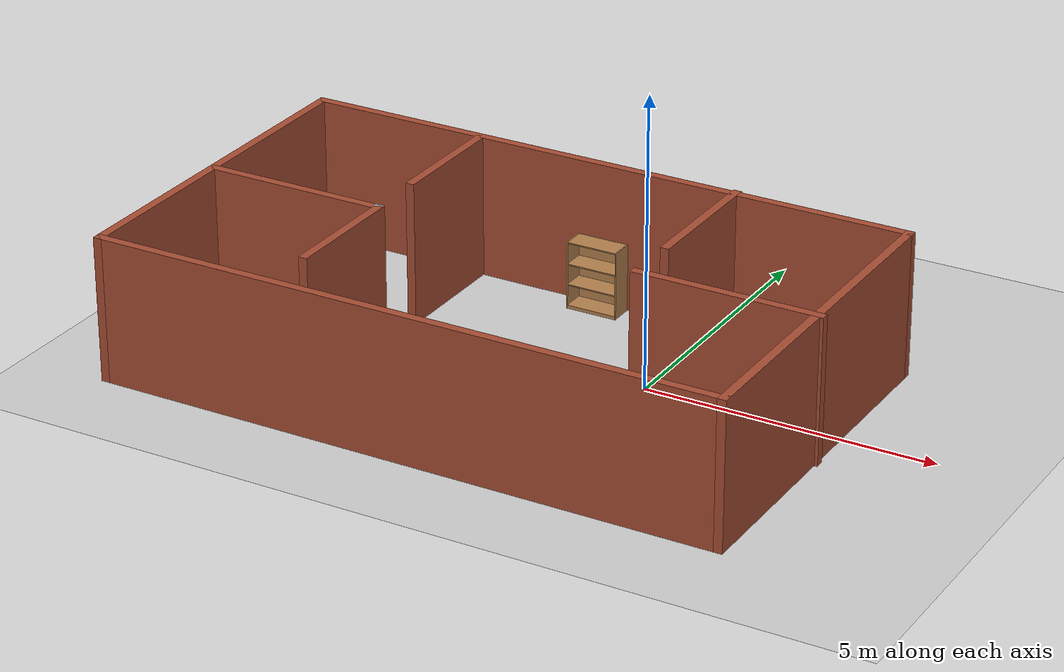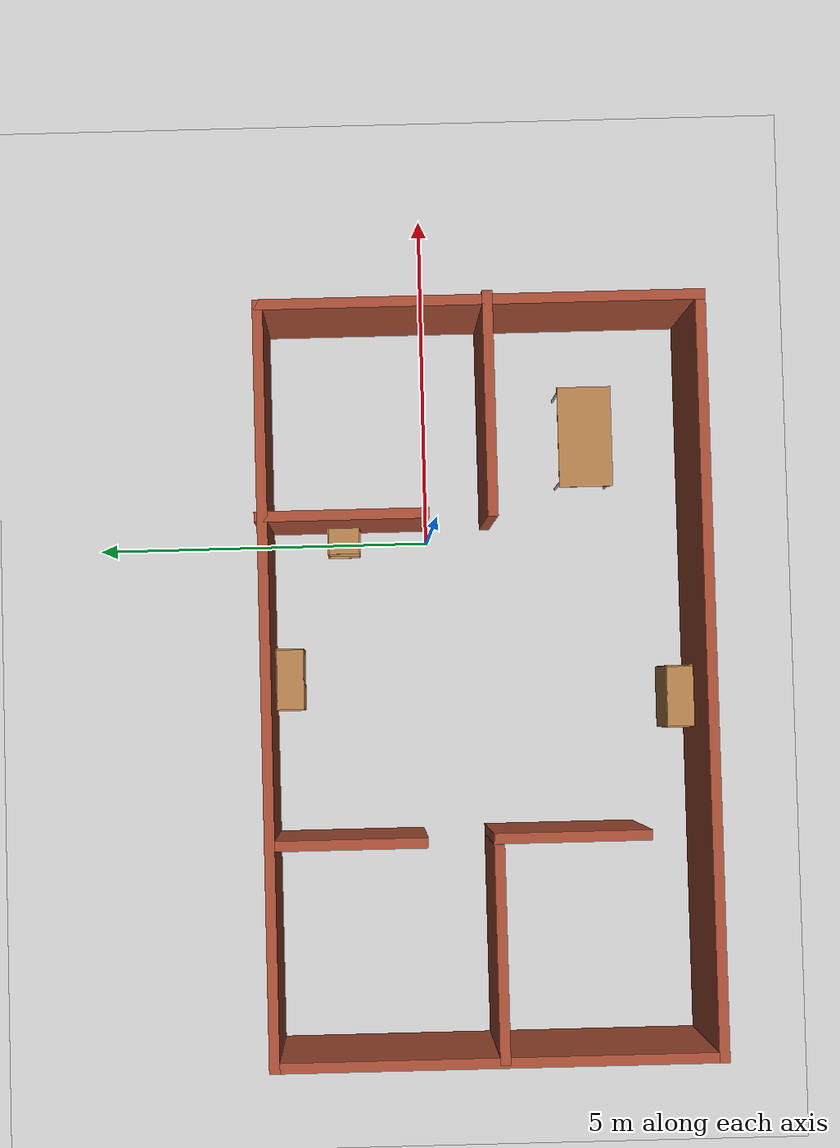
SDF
<sdf version="1.7">
 <world name="default">
  <light name="sun" type="directional">
   <pose>0 0 10 0 -0 0</pose>
   <diffuse>0.8 0.8 0.8 1</diffuse>
   <specular>0.2 0.2 0.2 1</specular>
   <attenuation>
    <range>1000</range>
    <constant>0.9</constant>
    <linear>0.01</linear>
    <quadratic>0.001</quadratic>
   </attenuation>
   <direction>-0.5 0.1 -0.9</direction>
   <spot><inner_angle>0</inner_angle><outer_angle>0</outer_angle><falloff>0</falloff></spot>
  </light>
  <model name="ground_plane">
   <static>1</static>
   <link name="link">
    <collision name="collision">
     <geometry><plane><normal>0 0 1</normal><size>100 100</size></plane></geometry>
     <surface>
      <contact><collide_bitmask>65535</collide_bitmask></contact>
      <friction><ode><mu>100</mu><mu2>50</mu2></ode></friction>
     </surface>
    </collision>
    <visual name="visual">
     <cast_shadows>0</cast_shadows>
     <geometry><plane><normal>0 0 1</normal><size>100 100</size></plane></geometry>
     <material>
      <script><uri>file://media/materials/scripts/gazebo.material</uri><name>Gazebo/Grey</name></script>
     </material>
    </visual>
   </link>
  </model>
  <gravity>0 0 -9.8</gravity>
  <magnetic_field>6e-06 2.3e-05 -4.2e-05</magnetic_field>
  <atmosphere type="adiabatic"/>
  <physics type="ode">
   <max_step_size>0.001</max_step_size>
   <real_time_factor>1</real_time_factor>
   <real_time_update_rate>1000</real_time_update_rate>
  </physics>
  <scene><ambient>0.4 0.4 0.4 1</ambient><background>0.7 0.7 0.7 1</background><shadows>1</shadows></scene>
  <spherical_coordinates>
   <surface_model>EARTH_WGS84</surface_model>
   <latitude_deg>0</latitude_deg>
   <longitude_deg>0</longitude_deg>
   <elevation>0</elevation>
   <heading_deg>0</heading_deg>
  </spherical_coordinates>
  <model name="modelhouse">
   <pose>-2.07213 -0.741372 0 0 -0 0</pose>
   <link name="Wall_0">
    <collision name="Wall_0_Collision">
     <geometry><box><size>6.5 0.15 2.5</size></box></geometry>
     <pose>0 0 1.25 0 -0 0</pose>
    </collision>
    <visual name="Wall_0_Visual">
     <pose>0 0 1.25 0 -0 0</pose>
     <geometry><box><size>6.5 0.15 2.5</size></box></geometry>
     <material>
      <script><uri>file://media/materials/scripts/gazebo.material</uri><name>Gazebo/Bricks</name></script>
      <ambient>1 1 1 1</ambient>
     </material>
     <meta><layer>0</layer></meta>
    </visual>
    <pose>-5.45203 -0.020113 0 0 -0 -1.5708</pose>
   </link>
   <link name="Wall_1">
    <collision name="Wall_1_Collision">
     <geometry><box><size>11 0.15 2.5</size></box></geometry>
     <pose>0 0 1.25 0 -0 0</pose>
    </collision>
    <visual name="Wall_1_Visual">
     <pose>0 0 1.25 0 -0 0</pose>
     <geometry><box><size>11 0.15 2.5</size></box></geometry>
     <material>
      <script><uri>file://media/materials/scripts/gazebo.material</uri><name>Gazebo/Bricks</name></script>
      <ambient>1 1 1 1</ambient>
     </material>
     <meta><layer>0</layer></meta>
    </visual>
    <pose>-0.027033 -3.19511 0 0 -0 0</pose>
   </link>
   <link name="Wall_10">
    <collision name="Wall_10_Collision">
     <geometry><box><size>2.25 0.15 2.5</size></box></geometry>
     <pose>0 0 1.25 0 -0 0</pose>
    </collision>
    <visual name="Wall_10_Visual">
     <pose>0 0 1.25 0 -0 0</pose>
     <geometry><box><size>2.25 0.15 2.5</size></box></geometry>
     <material>
      <script><uri>file://media/materials/scripts/gazebo.material</uri><name>Gazebo/Bricks</name></script>
      <ambient>1 1 1 1</ambient>
     </material>
     <meta><layer>0</layer></meta>
    </visual>
    <pose>-2.30181 -1.15351 0 0 -0 -1.5708</pose>
   </link>
   <link name="Wall_12">
    <collision name="Wall_12_Collision">
     <geometry><box><size>2.25 0.15 2.5</size></box></geometry>
     <pose>0 0 1.25 0 -0 0</pose>
    </collision>
    <visual name="Wall_12_Visual">
     <pose>0 0 1.25 0 -0 0</pose>
     <geometry><box><size>2.25 0.15 2.5</size></box></geometry>
     <material>
      <script><uri>file://media/materials/scripts/gazebo.material</uri><name>Gazebo/Bricks</name></script>
      <ambient>1 1 1 1</ambient>
     </material>
     <meta><layer>0</layer></meta>
    </visual>
    <pose>-2.33443 2.02443 0 0 -0 -1.5708</pose>
   </link>
   <link name="Wall_14">
    <collision name="Wall_14_Collision">
     <geometry><box><size>2.5 0.15 2.5</size></box></geometry>
     <pose>0 0 1.25 0 -0 0</pose>
    </collision>
    <visual name="Wall_14_Visual">
     <pose>0 0 1.25 0 -0 0</pose>
     <geometry><box><size>2.5 0.15 2.5</size></box></geometry>
     <material>
      <script><uri>file://media/materials/scripts/gazebo.material</uri><name>Gazebo/Bricks</name></script>
      <ambient>1 1 1 1</ambient>
     </material>
     <meta><layer>0</layer></meta>
    </visual>
    <pose>2.35203 2.02011 0 0 -0 -1.5708</pose>
   </link>
   <link name="Wall_16">
    <collision name="Wall_16_Collision">
     <geometry><box><size>3.25 0.15 2.5</size></box></geometry>
     <pose>0 0 1.25 0 -0 0</pose>
    </collision>
    <visual name="Wall_16_Visual">
     <pose>0 0 1.25 0 -0 0</pose>
     <geometry><box><size>3.25 0.15 2.5</size></box></geometry>
     <material>
      <script><uri>file://media/materials/scripts/gazebo.material</uri><name>Gazebo/Bricks</name></script>
      <ambient>1 1 1 1</ambient>
     </material>
     <meta><layer>0</layer></meta>
    </visual>
    <pose>3.90203 -0.143739 0 0 -0 0</pose>
   </link>
   <link name="Wall_2">
    <collision name="Wall_2_Collision">
     <geometry><box><size>6.5 0.15 2.5</size></box></geometry>
     <pose>0 0 1.25 0 -0 0</pose>
    </collision>
    <visual name="Wall_2_Visual">
     <pose>0 0 1.25 0 -0 0</pose>
     <geometry><box><size>6.5 0.15 2.5</size></box></geometry>
     <material>
      <script><uri>file://media/materials/scripts/gazebo.material</uri><name>Gazebo/Bricks</name></script>
      <ambient>1 1 1 1</ambient>
     </material>
     <meta><layer>0</layer></meta>
    </visual>
    <pose>5.39797 -0.020113 0 0 -0 1.5708</pose>
   </link>
   <link name="Wall_3">
    <collision name="Wall_3_Collision">
     <geometry><box><size>11 0.15 2.5</size></box></geometry>
     <pose>0 0 1.25 0 -0 0</pose>
    </collision>
    <visual name="Wall_3_Visual">
     <pose>0 0 1.25 0 -0 0</pose>
     <geometry><box><size>11 0.15 2.5</size></box></geometry>
     <material>
      <script><uri>file://media/materials/scripts/gazebo.material</uri><name>Gazebo/Bricks</name></script>
      <ambient>1 1 1 1</ambient>
     </material>
     <meta><layer>0</layer></meta>
    </visual>
    <pose>-0.027033 3.15489 0 0 -0 3.14159</pose>
   </link>
   <link name="Wall_8">
    <collision name="Wall_8_Collision">
     <geometry><box><size>3.25 0.15 2.5</size></box></geometry>
     <pose>0 0 1.25 0 -0 0</pose>
    </collision>
    <visual name="Wall_8_Visual">
     <pose>0 0 1.25 0 -0 0</pose>
     <geometry><box><size>3.25 0.15 2.5</size></box></geometry>
     <material>
      <script><uri>file://media/materials/scripts/gazebo.material</uri><name>Gazebo/Bricks</name></script>
      <ambient>1 1 1 1</ambient>
     </material>
     <meta><layer>0</layer></meta>
    </visual>
    <pose>-3.86181 -0.103512 0 0 -0 0</pose>
   </link>
   <link name="Wall_9">
    <collision name="Wall_9_Collision">
     <geometry><box><size>0.16 0.15 2.5</size></box></geometry>
     <pose>0 0 1.25 0 -0 0</pose>
    </collision>
    <visual name="Wall_9_Visual">
     <pose>0 0 1.25 0 -0 0</pose>
     <geometry><box><size>0.16 0.15 2.5</size></box></geometry>
     <material>
      <script><uri>file://media/materials/scripts/gazebo.material</uri><name>Gazebo/Grey</name></script>
      <ambient>1 1 1 1</ambient>
     </material>
     <meta><layer>0</layer></meta>
    </visual>
    <pose>-2.30681 -0.103512 0 0 -0 0</pose>
   </link>
   <static>1</static>
  </model>
  <model name="table">
   <static>1</static>
   <link name="link">
    <collision name="surface">
     <pose>0 0 1 0 -0 0</pose>
     <geometry><box><size>1.5 0.8 0.03</size></box></geometry>
     <surface><friction><ode><mu>0.6</mu><mu2>0.6</mu2></ode></friction></surface>
    </collision>
    <visual name="visual1">
     <pose>0 0 1 0 -0 0</pose>
     <geometry><box><size>1.5 0.8 0.03</size></box></geometry>
     <material>
      <script><uri>file://media/materials/scripts/gazebo.material</uri><name>Gazebo/Wood</name></script>
     </material>
    </visual>
    <collision name="front_left_leg">
     <pose>0.68 0.38 0.5 0 -0 0</pose>
     <geometry><cylinder><radius>0.02</radius><length>1</length></cylinder></geometry>
    </collision>
    <visual name="front_left_leg">
     <pose>0.68 0.38 0.5 0 -0 0</pose>
     <geometry><cylinder><radius>0.02</radius><length>1</length></cylinder></geometry>
     <material>
      <script><uri>file://media/materials/scripts/gazebo.material</uri><name>Gazebo/Grey</name></script>
     </material>
    </visual>
    <collision name="front_right_leg">
     <pose>0.68 -0.38 0.5 0 -0 0</pose>
     <geometry><cylinder><radius>0.02</radius><length>1</length></cylinder></geometry>
    </collision>
    <visual name="front_right_leg">
     <pose>0.68 -0.38 0.5 0 -0 0</pose>
     <geometry><cylinder><radius>0.02</radius><length>1</length></cylinder></geometry>
     <material>
      <script><uri>file://media/materials/scripts/gazebo.material</uri><name>Gazebo/Grey</name></script>
     </material>
    </visual>
    <collision name="back_right_leg">
     <pose>-0.68 -0.38 0.5 0 -0 0</pose>
     <geometry><cylinder><radius>0.02</radius><length>1</length></cylinder></geometry>
    </collision>
    <visual name="back_right_leg">
     <pose>-0.68 -0.38 0.5 0 -0 0</pose>
     <geometry><cylinder><radius>0.02</radius><length>1</length></cylinder></geometry>
     <material>
      <script><uri>file://media/materials/scripts/gazebo.material</uri><name>Gazebo/Grey</name></script>
     </material>
    </visual>
    <collision name="back_left_leg">
     <pose>-0.68 0.38 0.5 0 -0 0</pose>
     <geometry><cylinder><radius>0.02</radius><length>1</length></cylinder></geometry>
    </collision>
    <visual name="back_left_leg">
     <pose>-0.68 0.38 0.5 0 -0 0</pose>
     <geometry><cylinder><radius>0.02</radius><length>1</length></cylinder></geometry>
     <material>
      <script><uri>file://media/materials/scripts/gazebo.material</uri><name>Gazebo/Grey</name></script>
     </material>
    </visual>
   </link>
   <pose>1.48725 -2.37802 0 0 -0 0</pose>
  </model>
  <model name="cabinet">
   <static>1</static>
   <link name="cabinet_bottom_plate">
    <inertial>
     <pose>0 0 -1 0 -0 0</pose>
     <inertia><ixx>2.05</ixx><ixy>0</ixy><ixz>0</ixz><iyy>2.05</iyy><iyz>0</iyz><izz>2.05</izz></inertia>
     <mass>25</mass>
    </inertial>
    <collision name="cabinet_bottom_plate_geom">
     <pose>0 0 0.01 0 -0 0</pose>
     <geometry><box><size>0.45 0.45 0.02</size></box></geometry>
    </collision>
    <visual name="cabinet_bottom_plate_geom_visual">
     <pose>0 0 0.01 0 -0 0</pose>
     <geometry><box><size>0.45 0.45 0.02</size></box></geometry>
     <material>
      <script><uri>file://media/materials/scripts/gazebo.material</uri><name>Gazebo/Wood</name></script>
     </material>
    </visual>
    <collision name="cabinet_bottom_plate_geom_cabinet_back_plate">
     <pose>0.235 0 0.51 0 -0 0</pose>
     <geometry><box><size>0.02 0.45 1.02</size></box></geometry>
    </collision>
    <visual name="cabinet_bottom_plate_geom_cabinet_back_plate_visual">
     <pose>0.235 0 0.51 0 -0 0</pose>
     <geometry><box><size>0.02 0.45 1.02</size></box></geometry>
     <material>
      <script><uri>file://media/materials/scripts/gazebo.material</uri><name>Gazebo/Wood</name></script>
     </material>
    </visual>
    <collision name="cabinet_bottom_plate_geom_cabinet_left_plate">
     <pose>0 0.235 0.51 0 -0 0</pose>
     <geometry><box><size>0.45 0.02 1.02</size></box></geometry>
    </collision>
    <visual name="cabinet_bottom_plate_geom_cabinet_left_plate_visual">
     <pose>0 0.235 0.51 0 -0 0</pose>
     <geometry><box><size>0.45 0.02 1.02</size></box></geometry>
     <material>
      <script><uri>file://media/materials/scripts/gazebo.material</uri><name>Gazebo/Wood</name></script>
     </material>
    </visual>
    <collision name="cabinet_bottom_plate_geom_cabinet_middle_plate">
     <pose>0 0 0.51 0 -0 0</pose>
     <geometry><box><size>0.45 0.45 0.02</size></box></geometry>
    </collision>
    <visual name="cabinet_bottom_plate_geom_cabinet_middle_plate_visual">
     <pose>0 0 0.51 0 -0 0</pose>
     <geometry><box><size>0.45 0.45 0.02</size></box></geometry>
     <material>
      <script><uri>file://media/materials/scripts/gazebo.material</uri><name>Gazebo/Wood</name></script>
     </material>
    </visual>
    <collision name="cabinet_bottom_plate_geom_cabinet_right_plate">
     <pose>0 -0.235 0.51 0 -0 0</pose>
     <geometry><box><size>0.45 0.02 1.02</size></box></geometry>
    </collision>
    <visual name="cabinet_bottom_plate_geom_cabinet_right_plate_visual">
     <pose>0 -0.235 0.51 0 -0 0</pose>
     <geometry><box><size>0.45 0.02 1.02</size></box></geometry>
     <material>
      <script><uri>file://media/materials/scripts/gazebo.material</uri><name>Gazebo/Wood</name></script>
     </material>
    </visual>
    <collision name="cabinet_bottom_plate_geom_cabinet_top_plate">
     <pose>0 0 1.01 0 -0 0</pose>
     <geometry><box><size>0.45 0.45 0.02</size></box></geometry>
    </collision>
    <visual name="cabinet_bottom_plate_geom_cabinet_top_plate_visual">
     <pose>0 0 1.01 0 -0 0</pose>
     <geometry><box><size>0.45 0.45 0.02</size></box></geometry>
     <material>
      <script><uri>file://media/materials/scripts/gazebo.material</uri><name>Gazebo/Wood</name></script>
     </material>
    </visual>
   </link>
   <pose>0.043863 1.26598 0 0 -0 0</pose>
  </model>
  <model name="bookshelf">
   <static>1</static>
   <link name="link">
    <inertial><mass>1</mass></inertial>
    <collision name="back">
     <pose>0 0.005 0.6 0 -0 0</pose>
     <geometry><box><size>0.9 0.01 1.2</size></box></geometry>
    </collision>
    <visual name="visual1">
     <pose>0 0.005 0.6 0 -0 0</pose>
     <geometry><box><size>0.9 0.01 1.2</size></box></geometry>
     <material>
      <script><uri>file://media/materials/scripts/gazebo.material</uri><name>Gazebo/Wood</name></script>
     </material>
    </visual>
    <collision name="left_side">
     <pose>0.45 -0.195 0.6 0 -0 0</pose>
     <geometry><box><size>0.02 0.4 1.2</size></box></geometry>
    </collision>
    <visual name="visual2">
     <pose>0.45 -0.195 0.6 0 -0 0</pose>
     <geometry><box><size>0.02 0.4 1.2</size></box></geometry>
     <material>
      <script><uri>file://media/materials/scripts/gazebo.material</uri><name>Gazebo/Wood</name></script>
     </material>
    </visual>
    <collision name="right_side">
     <pose>-0.45 -0.195 0.6 0 -0 0</pose>
     <geometry><box><size>0.02 0.4 1.2</size></box></geometry>
    </collision>
    <visual name="visual3">
     <pose>-0.45 -0.195 0.6 0 -0 0</pose>
     <geometry><box><size>0.02 0.4 1.2</size></box></geometry>
     <material>
      <script><uri>file://media/materials/scripts/gazebo.material</uri><name>Gazebo/Wood</name></script>
     </material>
    </visual>
    <collision name="bottom">
     <pose>0 -0.195 0.03 0 -0 0</pose>
     <geometry><box><size>0.88 0.4 0.06</size></box></geometry>
    </collision>
    <visual name="visual4">
     <pose>0 -0.195 0.03 0 -0 0</pose>
     <geometry><box><size>0.88 0.4 0.06</size></box></geometry>
     <material>
      <script><uri>file://media/materials/scripts/gazebo.material</uri><name>Gazebo/Wood</name></script>
     </material>
    </visual>
    <collision name="top">
     <pose>0 -0.195 1.19 0 -0 0</pose>
     <geometry><box><size>0.88 0.4 0.02</size></box></geometry>
    </collision>
    <visual name="visual5">
     <pose>0 -0.195 1.19 0 -0 0</pose>
     <geometry><box><size>0.88 0.4 0.02</size></box></geometry>
     <material>
      <script><uri>file://media/materials/scripts/gazebo.material</uri><name>Gazebo/Wood</name></script>
     </material>
    </visual>
    <collision name="low_shelf">
     <pose>0 -0.195 0.43 0 -0 0</pose>
     <geometry><box><size>0.88 0.4 0.02</size></box></geometry>
    </collision>
    <visual name="visual6">
     <pose>0 -0.195 0.43 0 -0 0</pose>
     <geometry><box><size>0.88 0.4 0.02</size></box></geometry>
     <material>
      <script><uri>file://media/materials/scripts/gazebo.material</uri><name>Gazebo/Wood</name></script>
     </material>
    </visual>
    <collision name="high_shelf">
     <pose>0 -0.195 0.8 0 -0 0</pose>
     <geometry><box><size>0.88 0.4 0.02</size></box></geometry>
    </collision>
    <visual name="visual7">
     <pose>0 -0.195 0.8 0 -0 0</pose>
     <geometry><box><size>0.88 0.4 0.02</size></box></geometry>
     <material>
      <script><uri>file://media/materials/scripts/gazebo.material</uri><name>Gazebo/Wood</name></script>
     </material>
    </visual>
   </link>
   <pose>-2.03842 2.30713 0 0 -0 0</pose>
  </model>
  <model name="bookshelf_0">
   <static>1</static>
   <link name="link">
    <inertial><mass>1</mass></inertial>
    <collision name="back">
     <pose>0 0.005 0.6 0 -0 0</pose>
     <geometry><box><size>0.9 0.01 1.2</size></box></geometry>
    </collision>
    <visual name="visual1">
     <pose>0 0.005 0.6 0 -0 0</pose>
     <geometry><box><size>0.9 0.01 1.2</size></box></geometry>
     <material>
      <script><uri>file://media/materials/scripts/gazebo.material</uri><name>Gazebo/Wood</name></script>
     </material>
    </visual>
    <collision name="left_side">
     <pose>0.45 -0.195 0.6 0 -0 0</pose>
     <geometry><box><size>0.02 0.4 1.2</size></box></geometry>
    </collision>
    <visual name="visual2">
     <pose>0.45 -0.195 0.6 0 -0 0</pose>
     <geometry><box><size>0.02 0.4 1.2</size></box></geometry>
     <material>
      <script><uri>file://media/materials/scripts/gazebo.material</uri><name>Gazebo/Wood</name></script>
     </material>
    </visual>
    <collision name="right_side">
     <pose>-0.45 -0.195 0.6 0 -0 0</pose>
     <geometry><box><size>0.02 0.4 1.2</size></box></geometry>
    </collision>
    <visual name="visual3">
     <pose>-0.45 -0.195 0.6 0 -0 0</pose>
     <geometry><box><size>0.02 0.4 1.2</size></box></geometry>
     <material>
      <script><uri>file://media/materials/scripts/gazebo.material</uri><name>Gazebo/Wood</name></script>
     </material>
    </visual>
    <collision name="bottom">
     <pose>0 -0.195 0.03 0 -0 0</pose>
     <geometry><box><size>0.88 0.4 0.06</size></box></geometry>
    </collision>
    <visual name="visual4">
     <pose>0 -0.195 0.03 0 -0 0</pose>
     <geometry><box><size>0.88 0.4 0.06</size></box></geometry>
     <material>
      <script><uri>file://media/materials/scripts/gazebo.material</uri><name>Gazebo/Wood</name></script>
     </material>
    </visual>
    <collision name="top">
     <pose>0 -0.195 1.19 0 -0 0</pose>
     <geometry><box><size>0.88 0.4 0.02</size></box></geometry>
    </collision>
    <visual name="visual5">
     <pose>0 -0.195 1.19 0 -0 0</pose>
     <geometry><box><size>0.88 0.4 0.02</size></box></geometry>
     <material>
      <script><uri>file://media/materials/scripts/gazebo.material</uri><name>Gazebo/Wood</name></script>
     </material>
    </visual>
    <collision name="low_shelf">
     <pose>0 -0.195 0.43 0 -0 0</pose>
     <geometry><box><size>0.88 0.4 0.02</size></box></geometry>
    </collision>
    <visual name="visual6">
     <pose>0 -0.195 0.43 0 -0 0</pose>
     <geometry><box><size>0.88 0.4 0.02</size></box></geometry>
     <material>
      <script><uri>file://media/materials/scripts/gazebo.material</uri><name>Gazebo/Wood</name></script>
     </material>
    </visual>
    <collision name="high_shelf">
     <pose>0 -0.195 0.8 0 -0 0</pose>
     <geometry><box><size>0.88 0.4 0.02</size></box></geometry>
    </collision>
    <visual name="visual7">
     <pose>0 -0.195 0.8 0 -0 0</pose>
     <geometry><box><size>0.88 0.4 0.02</size></box></geometry>
     <material>
      <script><uri>file://media/materials/scripts/gazebo.material</uri><name>Gazebo/Wood</name></script>
     </material>
    </visual>
   </link>
   <pose>-2.42553 -3.46454 0 0 -0 0</pose>
  </model>
 </world>
</sdf>
